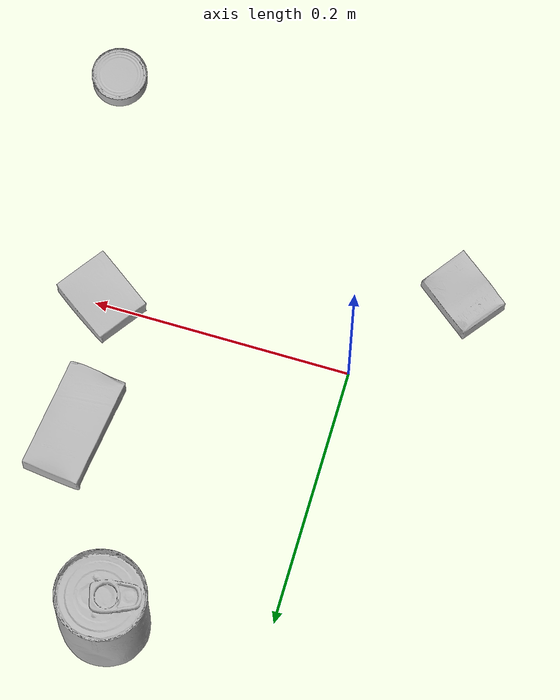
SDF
<sdf version="1.4">
  <world name="default">
    <light name="light1" type="point">
      <pose>0 0 1 0 0 0</pose>
      <diffuse>3 3 3 1</diffuse>
      <specular>3 3 3 1</specular>
    </light>
    <light name="light2" type="point">
      <pose>0 0.5 2 0 0 0</pose>
      <diffuse>1 1 1 1</diffuse>
      <specular>1 1 1 1</specular>
    </light>
    <light name="light3" type="point">
      <pose>0 0.5 2 0 0 0</pose>
      <diffuse>3 3 3 1</diffuse>
      <specular>3 3 3 1</specular>
    </light>
    <scene>
      <ambient>0.7 0.7 0.7</ambient>
    </scene>
    <model name="box1">
      <link name="link_box1">
        <collision name="default">
          <geometry>
            <mesh>
              <uri>model://cracker_box/collision_meshes/collision.obj</uri>
              <scale>0.25 0.25 0.25</scale>
            </mesh>
          </geometry>
          <surface>
            <friction>
              <ode>
                <mu>0.5</mu>
                <mu2>0.5</mu2>
              </ode>
            </friction>
          <contact>
        <ode>
            <max_vel>0</max_vel>
            <min_depth>0.0001</min_depth>
            <kp>1e8</kp>
        </ode>
    </contact></surface>
        </collision>
        <visual name="default">
          <geometry>
            <mesh>
              <uri>model://cracker_box/visual_meshes/visual.dae</uri>
              <scale>0.25 0.25 0.25</scale>
            </mesh>
          </geometry>
        </visual>
        <inertial>
          <mass>0.029061755165457726</mass>
          <pose>0.00023660456645302474 6.358561950037256e-05 -0.0004257383698131889 -0.0003162077745192934 -0.011106489600167671 0.002546795235645709</pose>
          <inertia>
            <ixx>4.620008e-06</ixx>
            <iyy>7.6285405e-06</iyy>
            <izz>1.0886628e-05</izz>
            <ixy>0</ixy>
            <ixz>0</ixz>
            <iyz>0</iyz>
          </inertia>
        </inertial>
      </link>
      <pose>-0.06669355183839798 -0.08231866359710693 0.009120450355112553 -0.011787923046241251 -0.007367192265555805 -0.6536994335889074</pose>
    </model>
    <model name="box2">
      <link name="link_box2">
        <collision name="default">
          <geometry>
            <mesh>
              <uri>model://sugar_box/collision_meshes/collision.obj</uri>
              <scale>0.5 0.5 0.5</scale>
            </mesh>
          </geometry>
          <surface>
            <friction>
              <ode>
                <mu>0.5</mu>
                <mu2>0.5</mu2>
              </ode>
            </friction>
          <contact>
        <ode>
            <max_vel>0</max_vel>
            <min_depth>0.0001</min_depth>
            <kp>1e8</kp>
        </ode>
    </contact></surface>
        </collision>
        <visual name="default">
          <geometry>
            <mesh>
              <uri>model://sugar_box/visual_meshes/visual.dae</uri>
              <scale>0.5 0.5 0.5</scale>
            </mesh>
          </geometry>
        </visual>
        <inertial>
          <mass>0.08909860998392105</mass>
          <pose>0.0005171863595023751 1.924554817378521e-05 -0.00018182402709499002 -0.00040462606756407727 0.0010506635218583888 0.002615378789044619</pose>
          <inertia>
            <ixx>1.8559176e-05</ixx>
            <iyy>5.9987076e-05</iyy>
            <izz>7.181169e-05</izz>
            <ixy>0</ixy>
            <ixz>0</ixz>
            <iyz>0</iyz>
          </inertia>
        </inertial>
      </link>
      <pose>0.18503962457180023 0.09898857027292252 0.011399306356906891 0.0007752808748119263 -0.023432536701002767 1.4320165859859502</pose>
    </model>
    <model name="box3">
      <link name="link_box3">
        <collision name="default">
          <geometry>
            <mesh>
              <uri>model://pudding_box/collision_meshes/collision.obj</uri>
              <scale>0.5 0.5 0.5</scale>
            </mesh>
          </geometry>
          <surface>
            <friction>
              <ode>
                <mu>0.5</mu>
                <mu2>0.5</mu2>
              </ode>
            </friction>
          <contact>
        <ode>
            <max_vel>0</max_vel>
            <min_depth>0.0001</min_depth>
            <kp>1e8</kp>
        </ode>
    </contact></surface>
        </collision>
        <visual name="default">
          <geometry>
            <mesh>
              <uri>model://pudding_box/visual_meshes/visual.dae</uri>
              <scale>0.5 0.5 0.5</scale>
            </mesh>
          </geometry>
        </visual>
        <inertial>
          <mass>0.058397307991981506</mass>
          <pose>0.00024474109522998333 0.000403394311433658 -0.0002594413817860186 0.005213099939270767 -0.006603797768571226 0.020079825168092046</pose>
          <inertia>
            <ixx>1.650379e-05</ixx>
            <iyy>1.1103868e-05</iyy>
            <izz>2.437216e-05</izz>
            <ixy>0</ixy>
            <ixz>0</ixz>
            <iyz>0</iyz>
          </inertia>
        </inertial>
      </link>
      <pose>0.19532838463783264 -0.0029514883644878864 0.009862903505563736 0.022348106847849457 -0.011392063670152764 0.9497513156860155</pose>
    </model>
    <model name="can1">
      <link name="link_can1">
        <collision name="default">
          <geometry>
            <mesh>
              <uri>model://tuna_fish_can/collision_meshes/collision.obj</uri>
              <scale>0.5 0.5 0.5</scale>
            </mesh>
          </geometry>
          <surface>
            <friction>
              <ode>
                <mu>0.5</mu>
                <mu2>0.5</mu2>
              </ode>
            </friction>
          <contact>
        <ode>
            <max_vel>0</max_vel>
            <min_depth>0.0001</min_depth>
            <kp>1e8</kp>
        </ode>
    </contact></surface>
        </collision>
        <visual name="default">
          <geometry>
            <mesh>
              <uri>model://tuna_fish_can/visual_meshes/visual.dae</uri>
              <scale>0.5 0.5 0.5</scale>
            </mesh>
          </geometry>
        </visual>
        <inertial>
          <mass>0.024247437715530396</mass>
          <pose>-2.0361860151751898e-05 -7.256063781824196e-06 -0.000526902440469712 -0.0017944785229743307 0.0001716120442354053 0.2405371667019961</pose>
          <inertia>
            <ixx>3.2782896e-06</ixx>
            <iyy>3.2646258e-06</iyy>
            <izz>5.609621e-06</izz>
            <ixy>0</ixy>
            <ixz>0</ixz>
            <iyz>0</iyz>
          </inertia>
        </inertial>
      </link>
      <pose>0.23443789780139923 -0.1771424561738968 0.00851999968290329 -1.6414140491299953e-08 -1.4103441971571203e-08 2.3184453533146243</pose>
    </model>
    <model name="can2">
      <link name="link_can2">
        <collision name="default">
          <geometry>
            <mesh>
              <uri>model://tomato_soup_can/collision_meshes/collision.obj</uri>
              <scale>1.0 1.0 1.0</scale>
            </mesh>
          </geometry>
          <surface>
            <friction>
              <ode>
                <mu>0.5</mu>
                <mu2>0.5</mu2>
              </ode>
            </friction>
          <contact>
        <ode>
            <max_vel>0</max_vel>
            <min_depth>0.0001</min_depth>
            <kp>1e8</kp>
        </ode>
    </contact></surface>
        </collision>
        <visual name="default">
          <geometry>
            <mesh>
              <uri>model://tomato_soup_can/visual_meshes/visual.dae</uri>
              <scale>1.0 1.0 1.0</scale>
            </mesh>
          </geometry>
        </visual>
        <inertial>
          <mass>0.44329848885536194</mass>
          <pose>0.0001265227037947625 0.00010805520287249237 -0.0017973989015445113 0.007020066893531886 0.00042299576578658417 -0.009903435969571123</pose>
          <inertia>
            <ixx>0.00048603912</ixx>
            <iyy>0.0004832301</iyy>
            <izz>0.00025190957</izz>
            <ixy>0</ixy>
            <ixz>0</ixz>
            <iyz>0</iyz>
          </inertia>
        </inertial>
      </link>
      <pose>0.11828378587961197 0.23524266481399536 0.05127401649951935 -3.827229620137567e-07 -5.446071713855348e-07 -1.5904601291214455</pose>
    </model>
  <physics type="ode">
      <max_contacts>50</max_contacts>
      <ode>
        <solver>
          <type>quick</type>
          <iters>75</iters>
        </solver>
        <constraints>
          <contact_max_correcting_vel>0</contact_max_correcting_vel>
          <contact_surface_layer>0</contact_surface_layer>
        </constraints>
      </ode>
    </physics></world>
</sdf>
